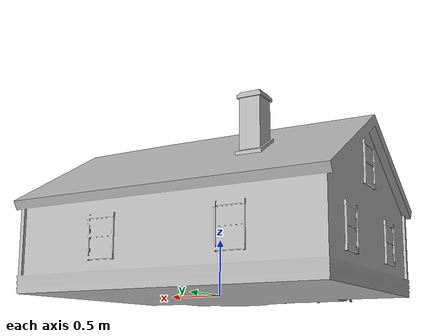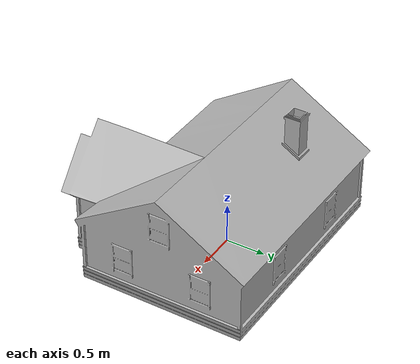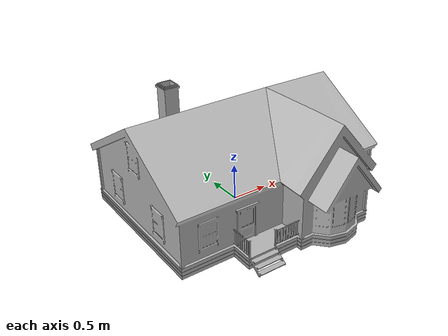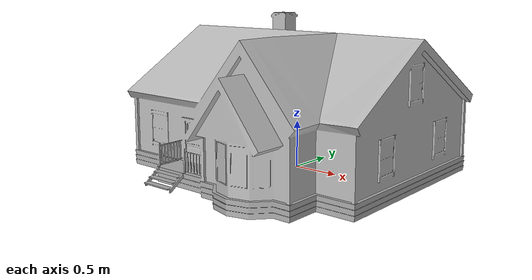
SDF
<?xml version="1.0" ?>
<sdf version='1.4'>
  <model name="house">
      <static>1</static>
      <link name='link'>
        <visual name='visual'>
          <geometry>
            <mesh>
              <uri>model://house/meshes/house.dae</uri>
              <scale>0.2 0.2 0.2</scale>
            </mesh>
          </geometry>
        </visual>
        <collision name='collision'>
          <laser_retro>0</laser_retro>
          <max_contacts>10</max_contacts>
          <pose frame=''>0 0 0 0 -0 0</pose>
          <geometry>
            <mesh>
              <uri>model://house/meshes/house.dae</uri>
              <scale>0.2 0.2 0.2</scale>
            </mesh>
          </geometry>
       </collision>
      </link>
  </model>
</sdf>
